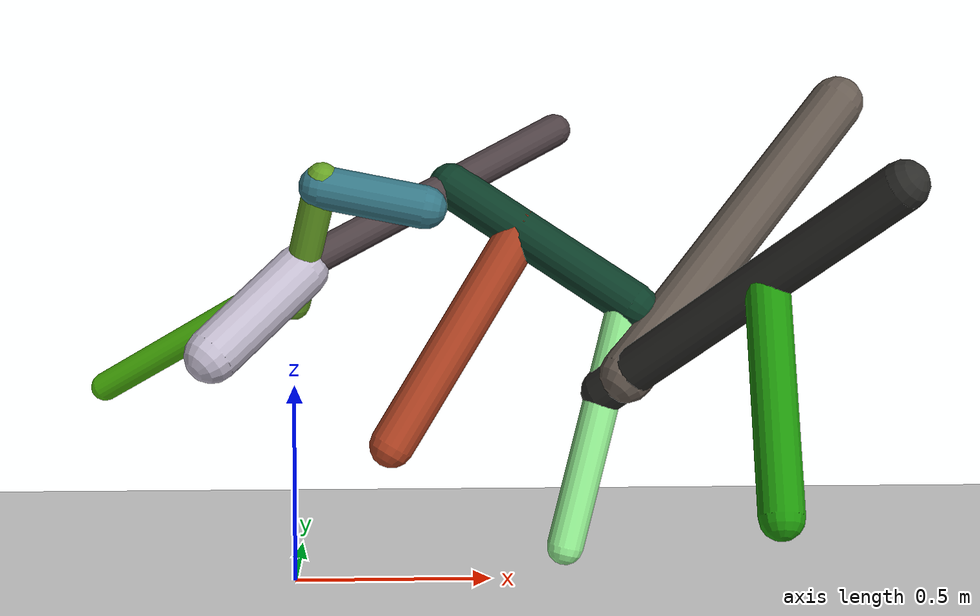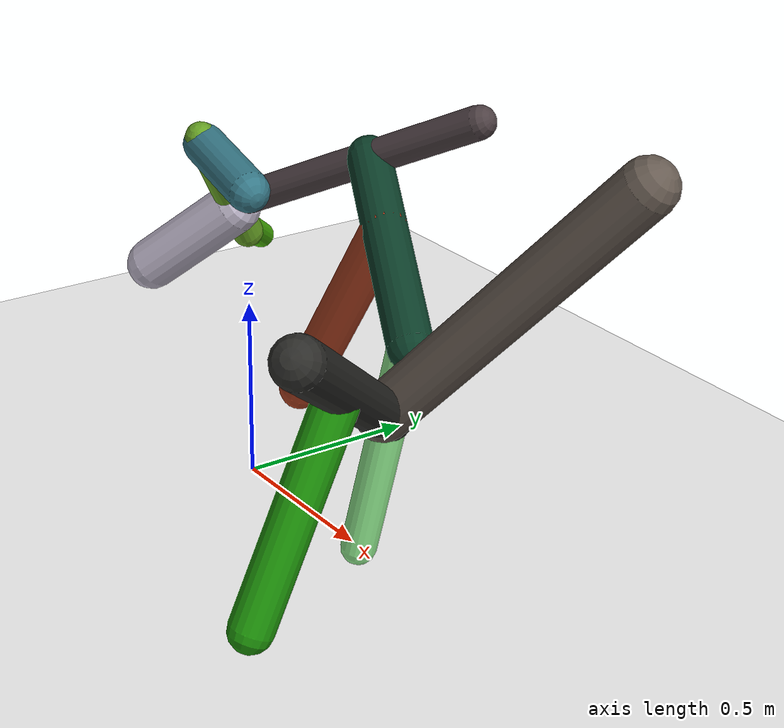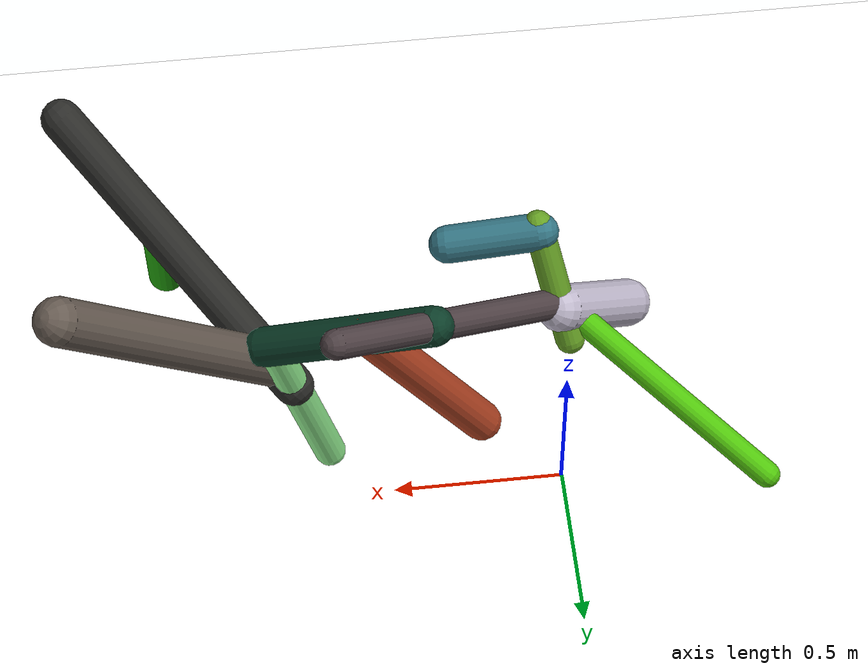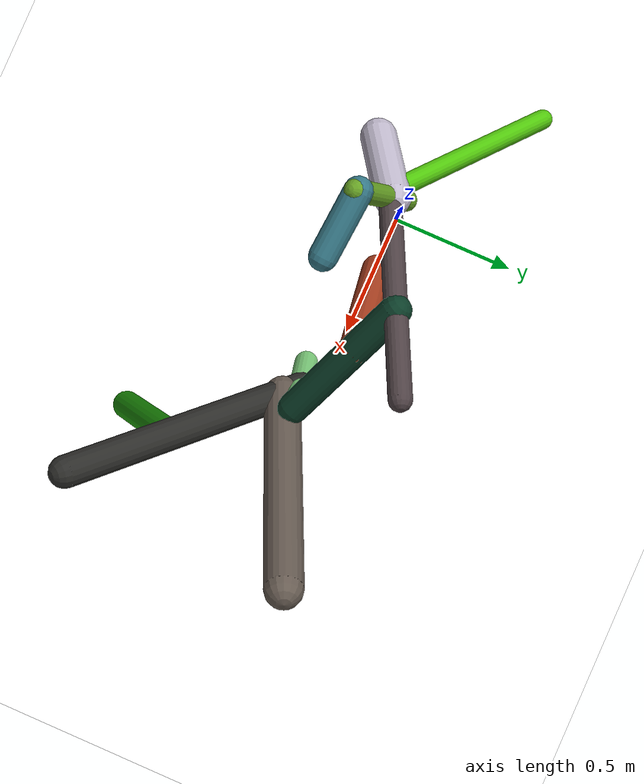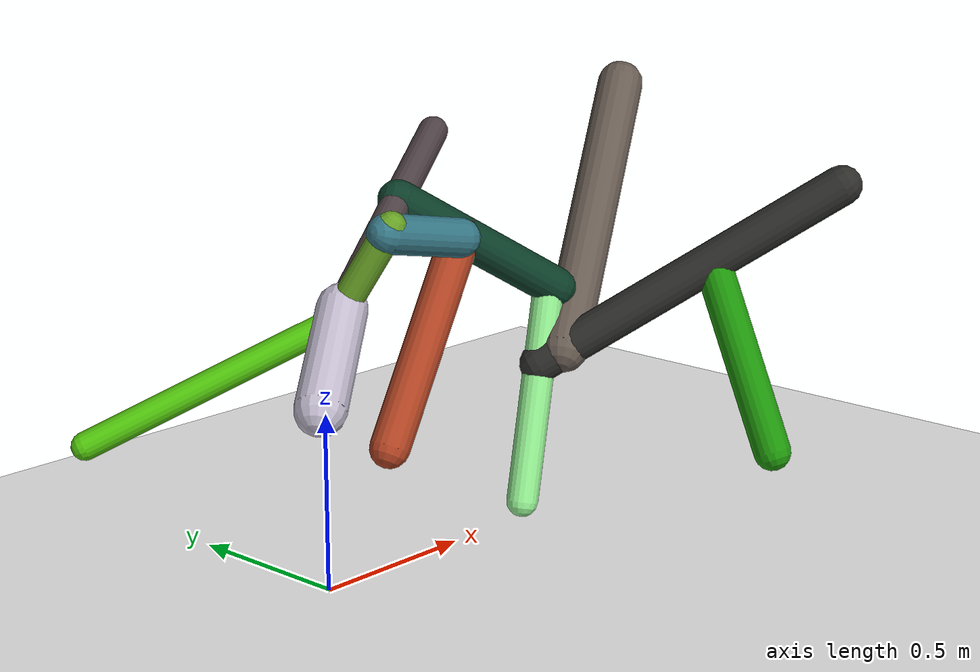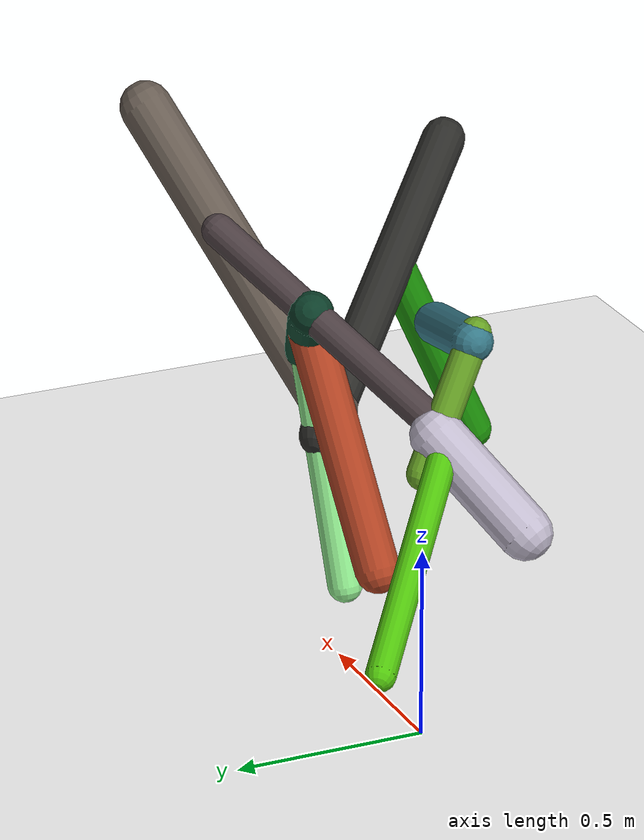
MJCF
<mujoco model="morphology">
  <option timestep="0.01"/>
  <default>
    <default class="/"/>
    <default class="0/"/>
    <default class="0/1/"/>
    <default class="0/2/"/>
    <default class="0/2/3/"/>
    <default class="0/2/3/4/"/>
    <default class="0/2/3/5/"/>
    <default class="0/2/3/5/6/"/>
    <default class="0/2/3/5/6/7/"/>
    <default class="0/2/3/5/6/8/"/>
    <default class="0/9/"/>
    <default class="0/9/10/"/>
  </default>
  <asset>
    <texture name="texplane" type="2d" builtin="checker" rgb1="0.10000000000000001 0.20000000000000001 0.29999999999999999" rgb2="0.20000000000000001 0.29999999999999999 0.40000000000000002" width="300" height="300"/>
    <material name="MatPlane" class="/" texture="texplane" texrepeat="20 20" specular="1" shininess="1" reflectance="0.5"/>
  </asset>
  <worldbody>
    <light name="//unnamed_light_0" class="/" directional="true" pos="0 0 1.5" dir="0 0 -1.3" cutoff="100" exponent="1" diffuse="1 1 1" specular="0.10000000000000001 0.10000000000000001 0.10000000000000001"/>
    <geom name="ground" class="/" type="plane" size="15 15 0.5" material="MatPlane" rgba="1 1 1 1"/>
    <site name="body" class="/" size="9.9999999999999995e-07 9.9999999999999995e-07 9.9999999999999995e-07" pos="0 0 0.70940146446228025"/>
    <body pos="0 0 0.70940146446228025" name="0/">
      <freejoint name="0/"/>
      <geom name="0/geom" class="0/" type="capsule" contype="1" conaffinity="1" condim="3" size="0.04167987004461178" rgba="0.39750936916674762 0.6246337051903279 0.14114790712717229 1" friction="0.59999999999999998 0.10000000000000001 0.10000000000000001" fromto="0 0 0 0.077711080378780384 -0.17623995390633895 0.31492832595764741"/>
      <site name="0/end0" class="0/" size="0.0050000000000000001" pos="0.077711080378780384 -0.17623995390633895 0.31492832595764741"/>
      <site name="0/attach1" class="0/" size="9.9999999999999995e-07 9.9999999999999995e-07 9.9999999999999995e-07" pos="0.073050428159662423 -0.16567012102964776 0.29604078258438093"/>
      <body pos="0.073050428159662423 -0.16567012102964776 0.29604078258438093" name="0/1/">
        <geom name="0/1/geom" class="0/1/" type="capsule" contype="1" conaffinity="1" condim="3" size="0.053882339813977567" rgba="0.21052398648436166 0.46869647088970201 0.52710428763191997 1" friction="0.59999999999999998 0.10000000000000001 0.10000000000000001" fromto="0 0 0 0.25481016993697292 -0.021409138139385164 -0.049448284001664455"/>
        <site name="0/1/end1" class="0/1/" size="0.0050000000000000001" pos="0.25481016993697292 -0.021409138139385164 -0.049448284001664455"/>
      </body>
      <site name="0/attach2" class="0/" size="9.9999999999999995e-07 9.9999999999999995e-07 9.9999999999999995e-07" pos="0.025027656271947325 -0.056759897896827012 0.10142592091050127"/>
      <body pos="0.025027656271947325 -0.056759897896827012 0.10142592091050127" name="0/2/">
        <geom name="0/2/geom" class="0/2/" type="capsule" contype="1" conaffinity="1" condim="3" size="0.04331342351721798" rgba="0.30042659796296622 0.24998585549515207 0.26283802349937258 1" friction="0.59999999999999998 0.10000000000000001 0.10000000000000001" fromto="0 0 0 0.65522673932053821 0.30739552578591711 0.33829126342989024"/>
        <site name="0/2/end2" class="0/2/" size="0.0050000000000000001" pos="0.65522673932053821 0.30739552578591711 0.33829126342989024"/>
        <site name="0/2/attach3" class="0/2/" size="9.9999999999999995e-07 9.9999999999999995e-07 9.9999999999999995e-07" pos="0.37705853991332711 0.17689465519816935 0.19467399939535843"/>
        <body pos="0.37705853991332711 0.17689465519816935 0.19467399939535843" name="0/2/3/">
          <joint name="0/2/3/joint/" class="0/2/" type="hinge" axis="0 -0.74009466603706864 0.67250270282243441" limited="true" range="-30.876621381341934 30.876621381341934"/>
          <geom name="0/2/3/geom" class="0/2/3/" type="capsule" contype="1" conaffinity="1" condim="3" size="0.057915490896964045" rgba="0.046500056555530578 0.24044340561725353 0.1597147340475833 1" friction="0.59999999999999998 0.10000000000000001 0.10000000000000001" fromto="0 0 0 0.45684772291023679 -0.19087642491050616 -0.30119364448079355"/>
          <site name="0/2/3/end3" class="0/2/3/" size="0.0050000000000000001" pos="0.45684772291023679 -0.19087642491050616 -0.30119364448079355"/>
          <site name="0/2/3/attach4" class="0/2/3/" size="9.9999999999999995e-07 9.9999999999999995e-07 9.9999999999999995e-07" pos="0.17584552942700213 -0.07347035852494839 -0.11593262528787932"/>
          <body pos="0.17584552942700213 -0.07347035852494839 -0.11593262528787932" name="0/2/3/4/">
            <joint name="0/2/3/4/joint/" class="0/2/3/" type="hinge" axis="0 -0.84466635269055179 0.53529314644635639" limited="true" range="-45.543354379969188 45.543354379969188"/>
            <geom name="0/2/3/4/geom" class="0/2/3/4/" type="capsule" contype="1" conaffinity="1" condim="3" size="0.057931947897884209" rgba="0.68694014701766459 0.26020911170940064 0.13455617514585838 1" friction="0.59999999999999998 0.10000000000000001 0.10000000000000001" fromto="0 0 0 -0.33194685541331637 -0.039386961651521224 -0.54521226814025059"/>
            <site name="0/2/3/4/end4" class="0/2/3/4/" size="0.0050000000000000001" pos="-0.33194685541331637 -0.039386961651521224 -0.54521226814025059"/>
          </body>
          <site name="0/2/3/attach5" class="0/2/3/" size="9.9999999999999995e-07 9.9999999999999995e-07 9.9999999999999995e-07" pos="0.43544887201707955 -0.18193572990242052 -0.28708566590282553"/>
          <body pos="0.43544887201707955 -0.18193572990242052 -0.28708566590282553" name="0/2/3/5/">
            <joint name="0/2/3/5/joint/" class="0/2/3/" type="hinge" axis="0 -0.84466635269055179 0.53529314644635639" limited="true" range="-37.080728984621373 37.080728984621373"/>
            <geom name="0/2/3/5/geom" class="0/2/3/5/" type="capsule" contype="1" conaffinity="1" condim="3" size="0.046467225713169663" rgba="0.57319235924630829 0.92994118738520914 0.56541017063694321 1" friction="0.59999999999999998 0.10000000000000001 0.10000000000000001" fromto="0 0 0 -0.15631089713038615 -0.037210325737668137 -0.61841571887166502"/>
            <site name="0/2/3/5/end5" class="0/2/3/5/" size="0.0050000000000000001" pos="-0.15631089713038615 -0.037210325737668137 -0.61841571887166502"/>
            <site name="0/2/3/5/attach6" class="0/2/3/5/" size="9.9999999999999995e-07 9.9999999999999995e-07 9.9999999999999995e-07" pos="-0.057314869766369049 -0.0136439941985595 -0.2267558886763931"/>
            <body pos="-0.057314869766369049 -0.0136439941985595 -0.2267558886763931" name="0/2/3/5/6/">
              <joint name="0/2/3/5/6/joint/" class="0/2/3/5/" type="hinge" axis="-2.7755575615628914e-16 -0.99819466170182947 0.060061779443925933" limited="true" range="-42.83623931044626 42.83623931044626"/>
              <geom name="0/2/3/5/6/geom" class="0/2/3/5/6/" type="capsule" contype="1" conaffinity="1" condim="3" size="0.059101906980855164" rgba="0.17156876323941761 0.17130463310391464 0.15992768351884701 1" friction="0.59999999999999998 0.10000000000000001 0.10000000000000001" fromto="0 0 0 0.59109184189699504 -0.62545623772219594 0.52264521475410697"/>
              <site name="0/2/3/5/6/end6" class="0/2/3/5/6/" size="0.0050000000000000001" pos="0.59109184189699504 -0.62545623772219594 0.52264521475410697"/>
              <site name="0/2/3/5/6/attach7" class="0/2/3/5/6/" size="9.9999999999999995e-07 9.9999999999999995e-07 9.9999999999999995e-07" pos="0.049946186722070039 -0.052849915734753158 0.044162571084941454"/>
              <body pos="0.049946186722070039 -0.052849915734753158 0.044162571084941454" name="0/2/3/5/6/7/">
                <joint name="0/2/3/5/6/7/joint/" class="0/2/3/5/6/" type="hinge" axis="0.80953507130746893 0.45049328065344613 -0.37644225640768125" limited="true" range="-41.012542858522686 41.012542858522686"/>
                <geom name="0/2/3/5/6/7/geom" class="0/2/3/5/6/7/" type="capsule" contype="1" conaffinity="1" condim="3" size="0.069547666740198494" rgba="0.39895721107404059 0.35515882961006395 0.31888605909377432 1" friction="0.59999999999999998 0.10000000000000001 0.10000000000000001" fromto="0 0 0 0.58100926409225639 0.27351853802203618 0.68393530309711981"/>
                <site name="0/2/3/5/6/7/end7" class="0/2/3/5/6/7/" size="0.0050000000000000001" pos="0.58100926409225639 0.27351853802203618 0.68393530309711981"/>
              </body>
              <site name="0/2/3/5/6/attach8" class="0/2/3/5/6/" size="9.9999999999999995e-07 9.9999999999999995e-07 9.9999999999999995e-07" pos="0.34059649583409057 -0.36039780583349118 0.301156463500515"/>
              <body pos="0.34059649583409057 -0.36039780583349118 0.301156463500515" name="0/2/3/5/6/8/">
                <joint name="0/2/3/5/6/8/joint/" class="0/2/3/5/6/" type="hinge" axis="0.80953507130746893 0.45049328065344613 -0.37644225640768125" limited="true" range="-64.314333852178649 64.314333852178649"/>
                <geom name="0/2/3/5/6/8/geom" class="0/2/3/5/6/8/" type="capsule" contype="1" conaffinity="1" condim="3" size="0.054168308488104278" rgba="0.11656296633498897 0.58379696704000095 0.040782347595282986 1" friction="0.59999999999999998 0.10000000000000001 0.10000000000000001" fromto="0 0 0 -0.0056994247599702064 -0.23444272026962043 -0.52185085287105082"/>
                <site name="0/2/3/5/6/8/end8" class="0/2/3/5/6/8/" size="0.0050000000000000001" pos="-0.0056994247599702064 -0.23444272026962043 -0.52185085287105082"/>
              </body>
            </body>
          </body>
        </body>
      </body>
      <site name="0/attach9" class="0/" size="9.9999999999999995e-07 9.9999999999999995e-07 9.9999999999999995e-07" pos="0.021244016527893685 -0.048179030267140981 0.086092517683913211"/>
      <body pos="0.021244016527893685 -0.048179030267140981 0.086092517683913211" name="0/9/">
        <geom name="0/9/geom" class="0/9/" type="capsule" contype="1" conaffinity="1" condim="3" size="0.069129993743449247" rgba="0.74964695963383166 0.7222889867936213 0.79723168216773377 1" friction="0.59999999999999998 0.10000000000000001 0.10000000000000001" fromto="0 0 0 -0.21385327939468302 -0.13955943017618977 -0.19969780501925616"/>
        <site name="0/9/end9" class="0/9/" size="0.0050000000000000001" pos="-0.21385327939468302 -0.13955943017618977 -0.19969780501925616"/>
        <site name="0/9/attach10" class="0/9/" size="9.9999999999999995e-07 9.9999999999999995e-07 9.9999999999999995e-07" pos="-0.021970933990309787 -0.014338106185724215 -0.020516623848401541"/>
        <body pos="-0.021970933990309787 -0.014338106185724215 -0.020516623848401541" name="0/9/10/">
          <joint name="0/9/10/joint/" class="0/9/" type="hinge" axis="0.75154206621179631 -0.37788827760774713 -0.54072633777240231" limited="true" range="-33.381975730295068 33.381975730295068"/>
          <geom name="0/9/10/geom" class="0/9/10/" type="capsule" contype="1" conaffinity="1" condim="3" size="0.037990552885488797" rgba="0.3147336527450989 0.76305185318629021 0.046095529322947804 1" friction="0.59999999999999998 0.10000000000000001 0.10000000000000001" fromto="0 0 0 -0.52230266416974724 0.41611286033562633 -0.31383646566220008"/>
          <site name="0/9/10/end10" class="0/9/10/" size="0.0050000000000000001" pos="-0.52230266416974724 0.41611286033562633 -0.31383646566220008"/>
        </body>
      </body>
      <camera name="0/iso" class="0/" mode="trackcom" pos="-2.2999999999999998 -2.2999999999999998 1" xyaxes="0.45000000000000001 -0.45000000000000001 0 0.29999999999999999 0.14999999999999999 0.93999999999999995"/>
    </body>
  </worldbody>
  <actuator>
    <motor name="0/2/3/motor" class="0/2/3/" ctrllimited="true" ctrlrange="-1 1" gear="58" joint="0/2/3/joint/"/>
    <motor name="0/2/3/4/motor" class="0/2/3/4/" ctrllimited="true" ctrlrange="-1 1" gear="88" joint="0/2/3/4/joint/"/>
    <motor name="0/2/3/5/motor" class="0/2/3/5/" ctrllimited="true" ctrlrange="-1 1" gear="69" joint="0/2/3/5/joint/"/>
    <motor name="0/2/3/5/6/motor" class="0/2/3/5/6/" ctrllimited="true" ctrlrange="-1 1" gear="77" joint="0/2/3/5/6/joint/"/>
    <motor name="0/2/3/5/6/7/motor" class="0/2/3/5/6/7/" ctrllimited="true" ctrlrange="-1 1" gear="67" joint="0/2/3/5/6/7/joint/"/>
    <motor name="0/2/3/5/6/8/motor" class="0/2/3/5/6/8/" ctrllimited="true" ctrlrange="-1 1" gear="71" joint="0/2/3/5/6/8/joint/"/>
    <motor name="0/9/10/motor" class="0/9/10/" ctrllimited="true" ctrlrange="-1 1" gear="89" joint="0/9/10/joint/"/>
  </actuator>
  <sensor>
    <subtreelinvel name="velocity" body="0/"/>
  </sensor>
</mujoco>
